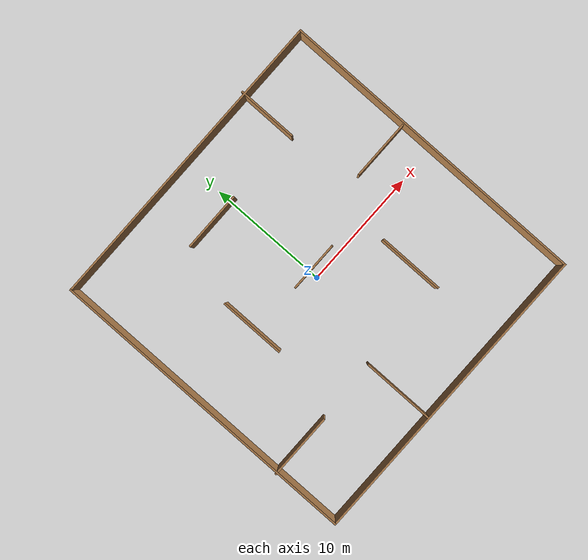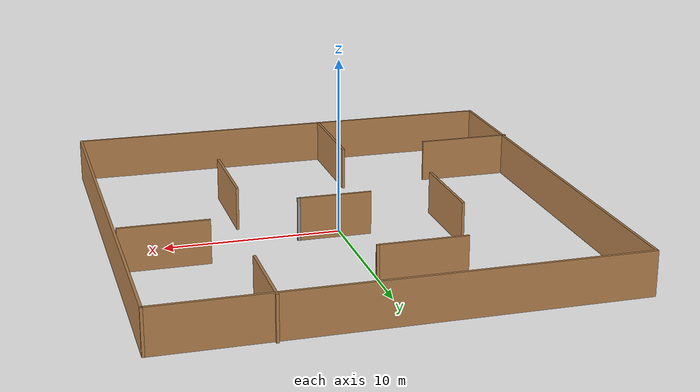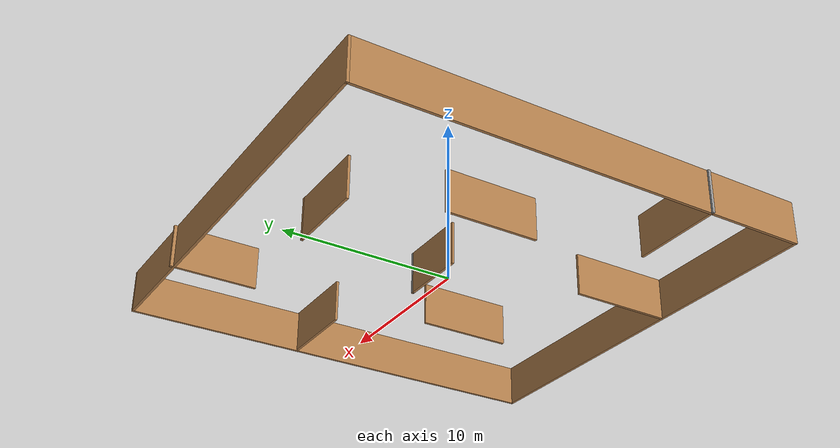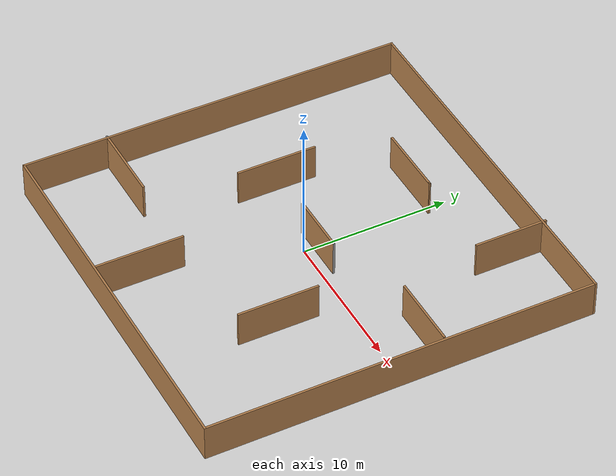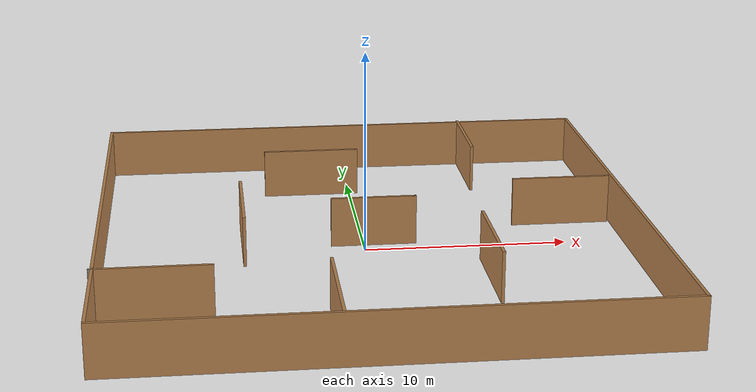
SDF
<?xml version='1.0'?>
<sdf version='1.7'>
  <model name='Maze_1'>
    <pose>0.039833 0.061932 0 0 -0 0</pose>
    <link name='Wall_16'>
      <collision name='Wall_16_Collision'>
        <geometry>
          <box>
            <size>26.5 0.15 2.5</size>
          </box>
        </geometry>
        <pose>0 0 1.25 0 -0 0</pose>
      </collision>
      <visual name='Wall_16_Visual'>
        <pose>0 0 1.25 0 -0 0</pose>
        <geometry>
          <box>
            <size>26.5 0.15 2.5</size>
          </box>
        </geometry>
        <material>
          <script>
            <uri>file://media/materials/scripts/gazebo.material</uri>
            <name>Gazebo/Wood</name>
          </script>
          <ambient>1 1 1 1</ambient>
        </material>
        <meta>
          <layer>0</layer>
        </meta>
      </visual>
      <pose>-12.8715 -0.092371 0 0 -0 -1.5708</pose>
    </link>
    <link name='Wall_17'>
      <collision name='Wall_17_Collision'>
        <geometry>
          <box>
            <size>26 0.15 2.5</size>
          </box>
        </geometry>
        <pose>0 0 1.25 0 -0 0</pose>
      </collision>
      <visual name='Wall_17_Visual'>
        <pose>0 0 1.25 0 -0 0</pose>
        <geometry>
          <box>
            <size>26 0.15 2.5</size>
          </box>
        </geometry>
        <material>
          <script>
            <uri>file://media/materials/scripts/gazebo.material</uri>
            <name>Gazebo/Wood</name>
          </script>
          <ambient>1 1 1 1</ambient>
        </material>
        <meta>
          <layer>0</layer>
        </meta>
      </visual>
      <pose>0.053502 -13.2674 0 0 -0 0</pose>
    </link>
    <link name='Wall_18'>
      <collision name='Wall_18_Collision'>
        <geometry>
          <box>
            <size>26.5 0.15 2.5</size>
          </box>
        </geometry>
        <pose>0 0 1.25 0 -0 0</pose>
      </collision>
      <visual name='Wall_18_Visual'>
        <pose>0 0 1.25 0 -0 0</pose>
        <geometry>
          <box>
            <size>26.5 0.15 2.5</size>
          </box>
        </geometry>
        <material>
          <script>
            <uri>file://media/materials/scripts/gazebo.material</uri>
            <name>Gazebo/Wood</name>
          </script>
          <ambient>1 1 1 1</ambient>
        </material>
        <meta>
          <layer>0</layer>
        </meta>
      </visual>
      <pose>12.9785 -0.092371 0 0 -0 1.5708</pose>
    </link>
    <link name='Wall_19'>
      <collision name='Wall_19_Collision'>
        <geometry>
          <box>
            <size>26 0.15 2.5</size>
          </box>
        </geometry>
        <pose>0 0 1.25 0 -0 0</pose>
      </collision>
      <visual name='Wall_19_Visual'>
        <pose>0 0 1.25 0 -0 0</pose>
        <geometry>
          <box>
            <size>26 0.15 2.5</size>
          </box>
        </geometry>
        <material>
          <script>
            <uri>file://media/materials/scripts/gazebo.material</uri>
            <name>Gazebo/Wood</name>
          </script>
          <ambient>1 1 1 1</ambient>
        </material>
        <meta>
          <layer>0</layer>
        </meta>
      </visual>
      <pose>0.053502 13.0826 0 0 -0 3.14159</pose>
    </link>
    <link name='Wall_21'>
      <collision name='Wall_21_Collision'>
        <geometry>
          <box>
            <size>0.16 0.15 2.5</size>
          </box>
        </geometry>
        <pose>0 0 1.25 0 -0 0</pose>
      </collision>
      <visual name='Wall_21_Visual'>
        <pose>0 0 1.25 0 -0 0</pose>
        <geometry>
          <box>
            <size>0.16 0.15 2.5</size>
          </box>
        </geometry>
        <material>
          <script>
            <uri>file://media/materials/scripts/gazebo.material</uri>
            <name>Gazebo/Wood</name>
          </script>
          <ambient>1 1 1 1</ambient>
        </material>
        <meta>
          <layer>0</layer>
        </meta>
      </visual>
      <pose>0.34862 8.58842 0 0 -0 0</pose>
    </link>
    <link name='Wall_22'>
      <collision name='Wall_22_Collision'>
        <geometry>
          <box>
            <size>5 0.15 2.5</size>
          </box>
        </geometry>
        <pose>0 0 1.25 0 -0 0</pose>
      </collision>
      <visual name='Wall_22_Visual'>
        <pose>0 0 1.25 0 -0 0</pose>
        <geometry>
          <box>
            <size>5 0.15 2.5</size>
          </box>
        </geometry>
        <material>
          <script>
            <uri>file://media/materials/scripts/gazebo.material</uri>
            <name>Gazebo/Wood</name>
          </script>
          <ambient>1 1 1 1</ambient>
        </material>
        <meta>
          <layer>0</layer>
        </meta>
      </visual>
      <pose>-2.07138 8.58842 0 0 -0 3.14159</pose>
    </link>
    <link name='Wall_24'>
      <collision name='Wall_24_Collision'>
        <geometry>
          <box>
            <size>0.16 0.15 2.5</size>
          </box>
        </geometry>
        <pose>0 0 1.25 0 -0 0</pose>
      </collision>
      <visual name='Wall_24_Visual'>
        <pose>0 0 1.25 0 -0 0</pose>
        <geometry>
          <box>
            <size>0.16 0.15 2.5</size>
          </box>
        </geometry>
        <material>
          <script>
            <uri>file://media/materials/scripts/gazebo.material</uri>
            <name>Gazebo/Grey</name>
          </script>
          <ambient>1 1 1 1</ambient>
        </material>
        <meta>
          <layer>0</layer>
        </meta>
      </visual>
      <pose>-12.9735 -7.46233 0 0 -0 0</pose>
    </link>
    <link name='Wall_25'>
      <collision name='Wall_25_Collision'>
        <geometry>
          <box>
            <size>5.5 0.15 2.5</size>
          </box>
        </geometry>
        <pose>0 0 1.25 0 -0 0</pose>
      </collision>
      <visual name='Wall_25_Visual'>
        <pose>0 0 1.25 0 -0 0</pose>
        <geometry>
          <box>
            <size>5.5 0.15 2.5</size>
          </box>
        </geometry>
        <material>
          <script>
            <uri>file://media/materials/scripts/gazebo.material</uri>
            <name>Gazebo/Wood</name>
          </script>
          <ambient>1 1 1 1</ambient>
        </material>
        <meta>
          <layer>0</layer>
        </meta>
      </visual>
      <pose>-10.2935 -7.46233 0 0 -0 0</pose>
    </link>
    <link name='Wall_27'>
      <collision name='Wall_27_Collision'>
        <geometry>
          <box>
            <size>6 0.15 2.5</size>
          </box>
        </geometry>
        <pose>0 0 1.25 0 -0 0</pose>
      </collision>
      <visual name='Wall_27_Visual'>
        <pose>0 0 1.25 0 -0 0</pose>
        <geometry>
          <box>
            <size>6 0.15 2.5</size>
          </box>
        </geometry>
        <material>
          <script>
            <uri>file://media/materials/scripts/gazebo.material</uri>
            <name>Gazebo/Wood</name>
          </script>
          <ambient>1 1 1 1</ambient>
        </material>
        <meta>
          <layer>0</layer>
        </meta>
      </visual>
      <pose>-2.3315 -10.2086 0 0 -0 1.5708</pose>
    </link>
    <link name='Wall_29'>
      <collision name='Wall_29_Collision'>
        <geometry>
          <box>
            <size>5.5 0.15 2.5</size>
          </box>
        </geometry>
        <pose>0 0 1.25 0 -0 0</pose>
      </collision>
      <visual name='Wall_29_Visual'>
        <pose>0 0 1.25 0 -0 0</pose>
        <geometry>
          <box>
            <size>5.5 0.15 2.5</size>
          </box>
        </geometry>
        <material>
          <script>
            <uri>file://media/materials/scripts/gazebo.material</uri>
            <name>Gazebo/Wood</name>
          </script>
          <ambient>1 1 1 1</ambient>
        </material>
        <meta>
          <layer>0</layer>
        </meta>
      </visual>
      <pose>-6.02318 1.09819 0 0 -0 -1.5708</pose>
    </link>
    <link name='Wall_31'>
      <collision name='Wall_31_Collision'>
        <geometry>
          <box>
            <size>0.16 0.15 2.5</size>
          </box>
        </geometry>
        <pose>0 0 1.25 0 -0 0</pose>
      </collision>
      <visual name='Wall_31_Visual'>
        <pose>0 0 1.25 0 -0 0</pose>
        <geometry>
          <box>
            <size>0.16 0.15 2.5</size>
          </box>
        </geometry>
        <material>
          <script>
            <uri>file://media/materials/scripts/gazebo.material</uri>
            <name>Gazebo/Grey</name>
          </script>
          <ambient>1 1 1 1</ambient>
        </material>
        <meta>
          <layer>0</layer>
        </meta>
      </visual>
      <pose>2.48872 0.670048 0 0 -0 0</pose>
    </link>
    <link name='Wall_32'>
      <collision name='Wall_32_Collision'>
        <geometry>
          <box>
            <size>4.25 0.15 2.5</size>
          </box>
        </geometry>
        <pose>0 0 1.25 0 -0 0</pose>
      </collision>
      <visual name='Wall_32_Visual'>
        <pose>0 0 1.25 0 -0 0</pose>
        <geometry>
          <box>
            <size>4.25 0.15 2.5</size>
          </box>
        </geometry>
        <material>
          <script>
            <uri>file://media/materials/scripts/gazebo.material</uri>
            <name>Gazebo/Wood</name>
          </script>
          <ambient>1 1 1 1</ambient>
        </material>
        <meta>
          <layer>0</layer>
        </meta>
      </visual>
      <pose>0.44372 0.670048 0 0 -0 3.14159</pose>
    </link>
    <link name='Wall_34'>
      <collision name='Wall_34_Collision'>
        <geometry>
          <box>
            <size>5 0.15 2.5</size>
          </box>
        </geometry>
        <pose>0 0 1.25 0 -0 0</pose>
      </collision>
      <visual name='Wall_34_Visual'>
        <pose>0 0 1.25 0 -0 0</pose>
        <geometry>
          <box>
            <size>5 0.15 2.5</size>
          </box>
        </geometry>
        <material>
          <script>
            <uri>file://media/materials/scripts/gazebo.material</uri>
            <name>Gazebo/Wood</name>
          </script>
          <ambient>1 1 1 1</ambient>
        </material>
        <meta>
          <layer>0</layer>
        </meta>
      </visual>
      <pose>10.3125 2.70314 0 0 -0 0</pose>
    </link>
    <link name='Wall_36'>
      <collision name='Wall_36_Collision'>
        <geometry>
          <box>
            <size>5.5 0.15 2.5</size>
          </box>
        </geometry>
        <pose>0 0 1.25 0 -0 0</pose>
      </collision>
      <visual name='Wall_36_Visual'>
        <pose>0 0 1.25 0 -0 0</pose>
        <geometry>
          <box>
            <size>5.5 0.15 2.5</size>
          </box>
        </geometry>
        <material>
          <script>
            <uri>file://media/materials/scripts/gazebo.material</uri>
            <name>Gazebo/Wood</name>
          </script>
          <ambient>1 1 1 1</ambient>
        </material>
        <meta>
          <layer>0</layer>
        </meta>
      </visual>
      <pose>5.42636 -4.62657 0 0 -0 -1.5708</pose>
    </link>
    <link name='Wall_41'>
      <collision name='Wall_41_Collision'>
        <geometry>
          <box>
            <size>5 0.15 2.5</size>
          </box>
        </geometry>
        <pose>0 0 1.25 0 -0 0</pose>
      </collision>
      <visual name='Wall_41_Visual'>
        <pose>0 0 1.25 0 -0 0</pose>
        <geometry>
          <box>
            <size>5 0.15 2.5</size>
          </box>
        </geometry>
        <material>
          <script>
            <uri>file://media/materials/scripts/gazebo.material</uri>
            <name>Gazebo/Wood</name>
          </script>
          <ambient>1 1 1 1</ambient>
        </material>
        <meta>
          <layer>0</layer>
        </meta>
      </visual>
      <pose>6.68216 10.8424 0 0 -0 -1.5708</pose>
    </link>
    <static>1</static>
  </model>
</sdf>
